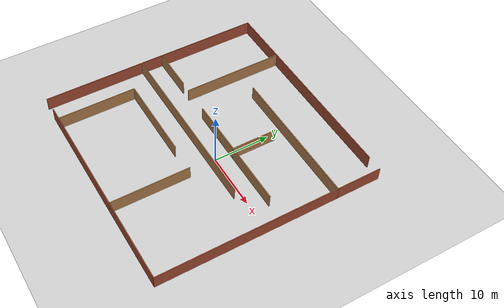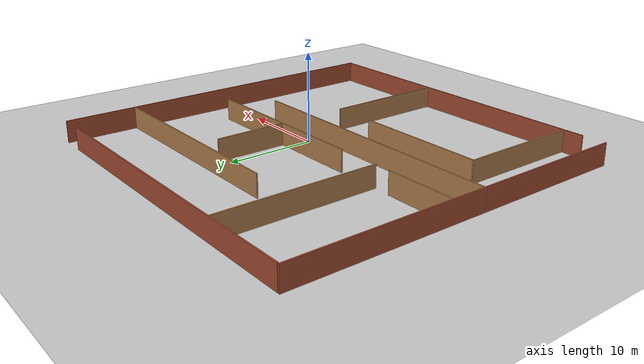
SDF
<sdf version="1.6">
 <world name="default">
  <light name="sun" type="directional">
   <pose>0 0 10 0 -0 0</pose>
   <diffuse>0.8 0.8 0.8 1</diffuse>
   <specular>0.1 0.1 0.1 1</specular>
   <attenuation>
    <range>1000</range>
    <constant>0.9</constant>
    <linear>0.01</linear>
    <quadratic>0.001</quadratic>
   </attenuation>
   <direction>-0.5 0.5 -1</direction>
  </light>
  <model name="ground_plane">
   <static>1</static>
   <link name="link">
    <collision name="collision">
     <geometry><plane><normal>0 0 1</normal><size>100 100</size></plane></geometry>
     <surface><friction><ode><mu>100</mu><mu2>50</mu2></ode></friction></surface>
    </collision>
    <visual name="visual">
     <cast_shadows>0</cast_shadows>
     <geometry><plane><normal>0 0 1</normal><size>100 100</size></plane></geometry>
     <material>
      <script><uri>file://media/materials/scripts/gazebo.material</uri><name>Gazebo/Grey</name></script>
     </material>
    </visual>
   </link>
  </model>
  <gravity>0 0 -9.8</gravity>
  <magnetic_field>6e-06 2.3e-05 -4.2e-05</magnetic_field>
  <atmosphere type="adiabatic"/>
  <physics name="default_physics" default="0" type="ode">
   <max_step_size>0.001</max_step_size>
   <real_time_factor>1</real_time_factor>
   <real_time_update_rate>1000</real_time_update_rate>
  </physics>
  <scene><ambient>0.4 0.4 0.4 1</ambient><background>0.7 0.7 0.7 1</background><shadows>1</shadows></scene>
  <spherical_coordinates>
   <surface_model>EARTH_WGS84</surface_model>
   <latitude_deg>0</latitude_deg>
   <longitude_deg>0</longitude_deg>
   <elevation>0</elevation>
   <heading_deg>0</heading_deg>
  </spherical_coordinates>
  <model name="room">
   <link name="Wall_0">
    <pose>-20 0 0 0 -0 1.5708</pose>
    <inertial>
     <mass>1</mass>
     <inertia><ixx>1</ixx><ixy>0</ixy><ixz>0</ixz><iyy>1</iyy><iyz>0</iyz><izz>1</izz></inertia>
    </inertial>
    <visual name="Wall_0_Visual">
     <pose>0 0 1.25 0 -0 0</pose>
     <geometry><box><size>40.15 0.15 2.5</size></box></geometry>
     <material>
      <script><uri>file://media/materials/scripts/gazebo.material</uri><name>Gazebo/Bricks</name></script>
      <ambient>0.761 0.663 0.627 1</ambient>
      <diffuse>1 1 1 1</diffuse>
      <specular>0.2 0.2 0.2 1</specular>
      <emissive>0 0 0 1</emissive>
      <shader type="vertex"><normal_map>__default__</normal_map></shader>
     </material>
    </visual>
    <collision name="Wall_0_Collision">
     <pose>0 0 1.25 0 -0 0</pose>
     <geometry><box><size>40.15 0.15 2.5</size></box></geometry>
     <surface>
      <friction>
       <ode><mu>1</mu><mu2>1</mu2><fdir1>0 0 0</fdir1><slip1>0</slip1><slip2>0</slip2></ode>
       <torsional>
        <coefficient>1</coefficient>
        <patch_radius>0</patch_radius>
        <surface_radius>0</surface_radius>
        <use_patch_radius>1</use_patch_radius>
        <ode><slip>0</slip></ode>
       </torsional>
      </friction>
      <bounce><restitution_coefficient>0</restitution_coefficient><threshold>1e+06</threshold></bounce>
      <contact>
       <collide_without_contact>0</collide_without_contact>
       <collide_without_contact_bitmask>1</collide_without_contact_bitmask>
       <collide_bitmask>1</collide_bitmask>
       <ode>
        <soft_cfm>0</soft_cfm>
        <soft_erp>0.2</soft_erp>
        <kp>1e+13</kp>
        <kd>1</kd>
        <max_vel>0.01</max_vel>
        <min_depth>0</min_depth>
       </ode>
       <bullet>
        <split_impulse>1</split_impulse>
        <split_impulse_penetration_threshold>-0.01</split_impulse_penetration_threshold>
        <soft_cfm>0</soft_cfm>
        <soft_erp>0.2</soft_erp>
        <kp>1e+13</kp>
        <kd>1</kd>
       </bullet>
      </contact>
     </surface>
    </collision>
   </link>
   <link name="Wall_10">
    <pose>-16 2 0 0 -0 0</pose>
    <visual name="Wall_10_Visual">
     <pose>0 0 1.25 0 -0 0</pose>
     <geometry><box><size>8.15 0.15 2.5</size></box></geometry>
     <material>
      <script><uri>file://media/materials/scripts/gazebo.material</uri><name>Gazebo/Wood</name></script>
      <ambient>0.996078 0.47451 0.0196078 1</ambient>
      <diffuse>1 1 1 1</diffuse>
      <specular>0.2 0.2 0.2 1</specular>
      <emissive>0 0 0 1</emissive>
     </material>
    </visual>
    <collision name="Wall_10_Collision">
     <pose>0 0 1.25 0 -0 0</pose>
     <geometry><box><size>8.15 0.15 2.5</size></box></geometry>
     <surface>
      <friction>
       <ode><mu>1</mu><mu2>1</mu2><fdir1>0 0 0</fdir1><slip1>0</slip1><slip2>0</slip2></ode>
       <torsional>
        <coefficient>1</coefficient>
        <patch_radius>0</patch_radius>
        <surface_radius>0</surface_radius>
        <use_patch_radius>1</use_patch_radius>
        <ode><slip>0</slip></ode>
       </torsional>
      </friction>
      <bounce><restitution_coefficient>0</restitution_coefficient><threshold>1e+06</threshold></bounce>
      <contact>
       <collide_without_contact>0</collide_without_contact>
       <collide_without_contact_bitmask>1</collide_without_contact_bitmask>
       <collide_bitmask>1</collide_bitmask>
       <ode>
        <soft_cfm>0</soft_cfm>
        <soft_erp>0.2</soft_erp>
        <kp>1e+13</kp>
        <kd>1</kd>
        <max_vel>0.01</max_vel>
        <min_depth>0</min_depth>
       </ode>
       <bullet>
        <split_impulse>1</split_impulse>
        <split_impulse_penetration_threshold>-0.01</split_impulse_penetration_threshold>
        <soft_cfm>0</soft_cfm>
        <soft_erp>0.2</soft_erp>
        <kp>1e+13</kp>
        <kd>1</kd>
       </bullet>
      </contact>
     </surface>
    </collision>
   </link>
   <link name="Wall_12">
    <pose>-10 11 0 0 0 -1.5708</pose>
    <visual name="Wall_12_Visual">
     <pose>0 0 1.25 0 -0 0</pose>
     <geometry><box><size>18.15 0.15 2.5</size></box></geometry>
     <material>
      <script><uri>file://media/materials/scripts/gazebo.material</uri><name>Gazebo/Wood</name></script>
      <ambient>0.996078 0.47451 0.0196078 1</ambient>
      <diffuse>1 1 1 1</diffuse>
      <specular>0.2 0.2 0.2 1</specular>
      <emissive>0 0 0 1</emissive>
     </material>
    </visual>
    <collision name="Wall_12_Collision">
     <pose>0 0 1.25 0 -0 0</pose>
     <geometry><box><size>18.15 0.15 2.5</size></box></geometry>
     <surface>
      <friction>
       <ode><mu>1</mu><mu2>1</mu2><fdir1>0 0 0</fdir1><slip1>0</slip1><slip2>0</slip2></ode>
       <torsional>
        <coefficient>1</coefficient>
        <patch_radius>0</patch_radius>
        <surface_radius>0</surface_radius>
        <use_patch_radius>1</use_patch_radius>
        <ode><slip>0</slip></ode>
       </torsional>
      </friction>
      <bounce><restitution_coefficient>0</restitution_coefficient><threshold>1e+06</threshold></bounce>
      <contact>
       <collide_without_contact>0</collide_without_contact>
       <collide_without_contact_bitmask>1</collide_without_contact_bitmask>
       <collide_bitmask>1</collide_bitmask>
       <ode>
        <soft_cfm>0</soft_cfm>
        <soft_erp>0.2</soft_erp>
        <kp>1e+13</kp>
        <kd>1</kd>
        <max_vel>0.01</max_vel>
        <min_depth>0</min_depth>
       </ode>
       <bullet>
        <split_impulse>1</split_impulse>
        <split_impulse_penetration_threshold>-0.01</split_impulse_penetration_threshold>
        <soft_cfm>0</soft_cfm>
        <soft_erp>0.2</soft_erp>
        <kp>1e+13</kp>
        <kd>1</kd>
       </bullet>
      </contact>
     </surface>
    </collision>
   </link>
   <link name="Wall_14">
    <pose>7.5 12 0 0 -0 3.14159</pose>
    <visual name="Wall_14_Visual">
     <pose>0 0 1.25 0 -0 0</pose>
     <geometry><box><size>25.15 0.15 2.5</size></box></geometry>
     <material>
      <script><uri>file://media/materials/scripts/gazebo.material</uri><name>Gazebo/Wood</name></script>
      <ambient>0.996078 0.47451 0.0196078 1</ambient>
      <diffuse>1 1 1 1</diffuse>
      <specular>0.2 0.2 0.2 1</specular>
      <emissive>0 0 0 1</emissive>
     </material>
    </visual>
    <collision name="Wall_14_Collision">
     <pose>0 0 1.25 0 -0 0</pose>
     <geometry><box><size>25.15 0.15 2.5</size></box></geometry>
     <surface>
      <friction>
       <ode><mu>1</mu><mu2>1</mu2><fdir1>0 0 0</fdir1><slip1>0</slip1><slip2>0</slip2></ode>
       <torsional>
        <coefficient>1</coefficient>
        <patch_radius>0</patch_radius>
        <surface_radius>0</surface_radius>
        <use_patch_radius>1</use_patch_radius>
        <ode><slip>0</slip></ode>
       </torsional>
      </friction>
      <bounce><restitution_coefficient>0</restitution_coefficient><threshold>1e+06</threshold></bounce>
      <contact>
       <collide_without_contact>0</collide_without_contact>
       <collide_without_contact_bitmask>1</collide_without_contact_bitmask>
       <collide_bitmask>1</collide_bitmask>
       <ode>
        <soft_cfm>0</soft_cfm>
        <soft_erp>0.2</soft_erp>
        <kp>1e+13</kp>
        <kd>1</kd>
        <max_vel>0.01</max_vel>
        <min_depth>0</min_depth>
       </ode>
       <bullet>
        <split_impulse>1</split_impulse>
        <split_impulse_penetration_threshold>-0.01</split_impulse_penetration_threshold>
        <soft_cfm>0</soft_cfm>
        <soft_erp>0.2</soft_erp>
        <kp>1e+13</kp>
        <kd>1</kd>
       </bullet>
      </contact>
     </surface>
    </collision>
   </link>
   <link name="Wall_18">
    <pose>5.5 2 0 0 -0 0</pose>
    <visual name="Wall_18_Visual">
     <pose>0 0 1.25 0 -0 0</pose>
     <geometry><box><size>21.15 0.15 2.5</size></box></geometry>
     <material>
      <script><uri>file://media/materials/scripts/gazebo.material</uri><name>Gazebo/Wood</name></script>
      <ambient>0.996078 0.47451 0.0196078 1</ambient>
      <diffuse>1 1 1 1</diffuse>
      <specular>0.2 0.2 0.2 1</specular>
      <emissive>0 0 0 1</emissive>
     </material>
    </visual>
    <collision name="Wall_18_Collision">
     <pose>0 0 1.25 0 -0 0</pose>
     <geometry><box><size>21.15 0.15 2.5</size></box></geometry>
     <surface>
      <friction>
       <ode><mu>1</mu><mu2>1</mu2><fdir1>0 0 0</fdir1><slip1>0</slip1><slip2>0</slip2></ode>
       <torsional>
        <coefficient>1</coefficient>
        <patch_radius>0</patch_radius>
        <surface_radius>0</surface_radius>
        <use_patch_radius>1</use_patch_radius>
        <ode><slip>0</slip></ode>
       </torsional>
      </friction>
      <bounce><restitution_coefficient>0</restitution_coefficient><threshold>1e+06</threshold></bounce>
      <contact>
       <collide_without_contact>0</collide_without_contact>
       <collide_without_contact_bitmask>1</collide_without_contact_bitmask>
       <collide_bitmask>1</collide_bitmask>
       <ode>
        <soft_cfm>0</soft_cfm>
        <soft_erp>0.2</soft_erp>
        <kp>1e+13</kp>
        <kd>1</kd>
        <max_vel>0.01</max_vel>
        <min_depth>0</min_depth>
       </ode>
       <bullet>
        <split_impulse>1</split_impulse>
        <split_impulse_penetration_threshold>-0.01</split_impulse_penetration_threshold>
        <soft_cfm>0</soft_cfm>
        <soft_erp>0.2</soft_erp>
        <kp>1e+13</kp>
        <kd>1</kd>
       </bullet>
      </contact>
     </surface>
    </collision>
   </link>
   <link name="Wall_2">
    <pose>20 0 0 0 -0 1.5708</pose>
    <visual name="Wall_2_Visual">
     <pose>0 0 1.25 0 -0 0</pose>
     <geometry><box><size>40.15 0.15 2.5</size></box></geometry>
     <material>
      <script><uri>file://media/materials/scripts/gazebo.material</uri><name>Gazebo/Bricks</name></script>
      <ambient>0.760784 0.662745 0.627451 1</ambient>
      <diffuse>1 1 1 1</diffuse>
      <specular>0.2 0.2 0.2 1</specular>
      <emissive>0 0 0 1</emissive>
     </material>
    </visual>
    <collision name="Wall_2_Collision">
     <pose>0 0 1.25 0 -0 0</pose>
     <geometry><box><size>40.15 0.15 2.5</size></box></geometry>
     <surface>
      <friction>
       <ode><mu>1</mu><mu2>1</mu2><fdir1>0 0 0</fdir1><slip1>0</slip1><slip2>0</slip2></ode>
       <torsional>
        <coefficient>1</coefficient>
        <patch_radius>0</patch_radius>
        <surface_radius>0</surface_radius>
        <use_patch_radius>1</use_patch_radius>
        <ode><slip>0</slip></ode>
       </torsional>
      </friction>
      <bounce><restitution_coefficient>0</restitution_coefficient><threshold>1e+06</threshold></bounce>
      <contact>
       <collide_without_contact>0</collide_without_contact>
       <collide_without_contact_bitmask>1</collide_without_contact_bitmask>
       <collide_bitmask>1</collide_bitmask>
       <ode>
        <soft_cfm>0</soft_cfm>
        <soft_erp>0.2</soft_erp>
        <kp>1e+13</kp>
        <kd>1</kd>
        <max_vel>0.01</max_vel>
        <min_depth>0</min_depth>
       </ode>
       <bullet>
        <split_impulse>1</split_impulse>
        <split_impulse_penetration_threshold>-0.01</split_impulse_penetration_threshold>
        <soft_cfm>0</soft_cfm>
        <soft_erp>0.2</soft_erp>
        <kp>1e+13</kp>
        <kd>1</kd>
       </bullet>
      </contact>
     </surface>
    </collision>
   </link>
   <link name="Wall_20">
    <pose>5 6 0 0 0 -1.5708</pose>
    <visual name="Wall_20_Visual">
     <pose>0 0 1.25 0 -0 0</pose>
     <geometry><box><size>8.15 0.15 2.5</size></box></geometry>
     <material>
      <script><uri>file://media/materials/scripts/gazebo.material</uri><name>Gazebo/Wood</name></script>
      <ambient>0.996078 0.47451 0.0196078 1</ambient>
      <diffuse>1 1 1 1</diffuse>
      <specular>0.2 0.2 0.2 1</specular>
      <emissive>0 0 0 1</emissive>
     </material>
    </visual>
    <collision name="Wall_20_Collision">
     <pose>0 0 1.25 0 -0 0</pose>
     <geometry><box><size>8.15 0.15 2.5</size></box></geometry>
     <surface>
      <friction>
       <ode><mu>1</mu><mu2>1</mu2><fdir1>0 0 0</fdir1><slip1>0</slip1><slip2>0</slip2></ode>
       <torsional>
        <coefficient>1</coefficient>
        <patch_radius>0</patch_radius>
        <surface_radius>0</surface_radius>
        <use_patch_radius>1</use_patch_radius>
        <ode><slip>0</slip></ode>
       </torsional>
      </friction>
      <bounce><restitution_coefficient>0</restitution_coefficient><threshold>1e+06</threshold></bounce>
      <contact>
       <collide_without_contact>0</collide_without_contact>
       <collide_without_contact_bitmask>1</collide_without_contact_bitmask>
       <collide_bitmask>1</collide_bitmask>
       <ode>
        <soft_cfm>0</soft_cfm>
        <soft_erp>0.2</soft_erp>
        <kp>1e+13</kp>
        <kd>1</kd>
        <max_vel>0.01</max_vel>
        <min_depth>0</min_depth>
       </ode>
       <bullet>
        <split_impulse>1</split_impulse>
        <split_impulse_penetration_threshold>-0.01</split_impulse_penetration_threshold>
        <soft_cfm>0</soft_cfm>
        <soft_erp>0.2</soft_erp>
        <kp>1e+13</kp>
        <kd>1</kd>
       </bullet>
      </contact>
     </surface>
    </collision>
   </link>
   <link name="Wall_23">
    <pose>-15 -13 0 0 -0 1.5708</pose>
    <visual name="Wall_23_Visual">
     <pose>0 0 1.25 0 -0 0</pose>
     <geometry><box><size>14.15 0.15 2.5</size></box></geometry>
     <material>
      <script><uri>file://media/materials/scripts/gazebo.material</uri><name>Gazebo/Wood</name></script>
      <ambient>0.996078 0.47451 0.0196078 1</ambient>
      <diffuse>1 1 1 1</diffuse>
      <specular>0.2 0.2 0.2 1</specular>
      <emissive>0 0 0 1</emissive>
     </material>
    </visual>
    <collision name="Wall_23_Collision">
     <pose>0 0 1.25 0 -0 0</pose>
     <geometry><box><size>14.15 0.15 2.5</size></box></geometry>
     <surface>
      <friction>
       <ode><mu>1</mu><mu2>1</mu2><fdir1>0 0 0</fdir1><slip1>0</slip1><slip2>0</slip2></ode>
       <torsional>
        <coefficient>1</coefficient>
        <patch_radius>0</patch_radius>
        <surface_radius>0</surface_radius>
        <use_patch_radius>1</use_patch_radius>
        <ode><slip>0</slip></ode>
       </torsional>
      </friction>
      <bounce><restitution_coefficient>0</restitution_coefficient><threshold>1e+06</threshold></bounce>
      <contact>
       <collide_without_contact>0</collide_without_contact>
       <collide_without_contact_bitmask>1</collide_without_contact_bitmask>
       <collide_bitmask>1</collide_bitmask>
       <ode>
        <soft_cfm>0</soft_cfm>
        <soft_erp>0.2</soft_erp>
        <kp>1e+13</kp>
        <kd>1</kd>
        <max_vel>0.01</max_vel>
        <min_depth>0</min_depth>
       </ode>
       <bullet>
        <split_impulse>1</split_impulse>
        <split_impulse_penetration_threshold>-0.01</split_impulse_penetration_threshold>
        <soft_cfm>0</soft_cfm>
        <soft_erp>0.2</soft_erp>
        <kp>1e+13</kp>
        <kd>1</kd>
       </bullet>
      </contact>
     </surface>
    </collision>
   </link>
   <link name="Wall_24">
    <pose>-7.5 -6 0 0 -0 0</pose>
    <visual name="Wall_24_Visual">
     <pose>0 0 1.25 0 -0 0</pose>
     <geometry><box><size>15.15 0.15 2.5</size></box></geometry>
     <material>
      <script><uri>file://media/materials/scripts/gazebo.material</uri><name>Gazebo/Wood</name></script>
      <ambient>0.996078 0.47451 0.0196078 1</ambient>
      <diffuse>1 1 1 1</diffuse>
      <specular>0.2 0.2 0.2 1</specular>
      <emissive>0 0 0 1</emissive>
     </material>
    </visual>
    <collision name="Wall_24_Collision">
     <pose>0 0 1.25 0 -0 0</pose>
     <geometry><box><size>15.15 0.15 2.5</size></box></geometry>
     <surface>
      <friction>
       <ode><mu>1</mu><mu2>1</mu2><fdir1>0 0 0</fdir1><slip1>0</slip1><slip2>0</slip2></ode>
       <torsional>
        <coefficient>1</coefficient>
        <patch_radius>0</patch_radius>
        <surface_radius>0</surface_radius>
        <use_patch_radius>1</use_patch_radius>
        <ode><slip>0</slip></ode>
       </torsional>
      </friction>
      <bounce><restitution_coefficient>0</restitution_coefficient><threshold>1e+06</threshold></bounce>
      <contact>
       <collide_without_contact>0</collide_without_contact>
       <collide_without_contact_bitmask>1</collide_without_contact_bitmask>
       <collide_bitmask>1</collide_bitmask>
       <ode>
        <soft_cfm>0</soft_cfm>
        <soft_erp>0.2</soft_erp>
        <kp>1e+13</kp>
        <kd>1</kd>
        <max_vel>0.01</max_vel>
        <min_depth>0</min_depth>
       </ode>
       <bullet>
        <split_impulse>1</split_impulse>
        <split_impulse_penetration_threshold>-0.01</split_impulse_penetration_threshold>
        <soft_cfm>0</soft_cfm>
        <soft_erp>0.2</soft_erp>
        <kp>1e+13</kp>
        <kd>1</kd>
       </bullet>
      </contact>
     </surface>
    </collision>
   </link>
   <link name="Wall_26">
    <pose>5 -13 0 0 -0 1.5708</pose>
    <visual name="Wall_26_Visual">
     <pose>0 0 1.25 0 -0 0</pose>
     <geometry><box><size>14.15 0.15 2.5</size></box></geometry>
     <material>
      <script><uri>file://media/materials/scripts/gazebo.material</uri><name>Gazebo/Wood</name></script>
      <ambient>0.996078 0.47451 0.0196078 1</ambient>
      <diffuse>1 1 1 1</diffuse>
      <specular>0.2 0.2 0.2 1</specular>
      <emissive>0 0 0 1</emissive>
     </material>
    </visual>
    <collision name="Wall_26_Collision">
     <pose>0 0 1.25 0 -0 0</pose>
     <geometry><box><size>14.15 0.15 2.5</size></box></geometry>
     <surface>
      <friction>
       <ode><mu>1</mu><mu2>1</mu2><fdir1>0 0 0</fdir1><slip1>0</slip1><slip2>0</slip2></ode>
       <torsional>
        <coefficient>1</coefficient>
        <patch_radius>0</patch_radius>
        <surface_radius>0</surface_radius>
        <use_patch_radius>1</use_patch_radius>
        <ode><slip>0</slip></ode>
       </torsional>
      </friction>
      <bounce><restitution_coefficient>0</restitution_coefficient><threshold>1e+06</threshold></bounce>
      <contact>
       <collide_without_contact>0</collide_without_contact>
       <collide_without_contact_bitmask>1</collide_without_contact_bitmask>
       <collide_bitmask>1</collide_bitmask>
       <ode>
        <soft_cfm>0</soft_cfm>
        <soft_erp>0.2</soft_erp>
        <kp>1e+13</kp>
        <kd>1</kd>
        <max_vel>0.01</max_vel>
        <min_depth>0</min_depth>
       </ode>
       <bullet>
        <split_impulse>1</split_impulse>
        <split_impulse_penetration_threshold>-0.01</split_impulse_penetration_threshold>
        <soft_cfm>0</soft_cfm>
        <soft_erp>0.2</soft_erp>
        <kp>1e+13</kp>
        <kd>1</kd>
       </bullet>
      </contact>
     </surface>
    </collision>
   </link>
   <link name="Wall_28">
    <pose>-1.25 20 0 0 -0 0</pose>
    <inertial>
     <mass>1</mass>
     <inertia><ixx>1</ixx><ixy>0</ixy><ixz>0</ixz><iyy>1</iyy><iyz>0</iyz><izz>1</izz></inertia>
    </inertial>
    <visual name="Wall_28_Visual">
     <pose>0 0 1.25 0 -0 0</pose>
     <geometry><box><size>37.15 0.15 2.5</size></box></geometry>
     <material>
      <script><uri>file://media/materials/scripts/gazebo.material</uri><name>Gazebo/Bricks</name></script>
      <ambient>0.761 0.663 0.627 1</ambient>
      <diffuse>1 1 1 1</diffuse>
      <specular>0.2 0.2 0.2 1</specular>
      <emissive>0 0 0 1</emissive>
      <shader type="vertex"><normal_map>__default__</normal_map></shader>
     </material>
    </visual>
    <collision name="Wall_28_Collision">
     <pose>0 0 1.25 0 -0 0</pose>
     <geometry><box><size>37.15 0.15 2.5</size></box></geometry>
     <surface>
      <friction>
       <ode><mu>1</mu><mu2>1</mu2><fdir1>0 0 0</fdir1><slip1>0</slip1><slip2>0</slip2></ode>
       <torsional>
        <coefficient>1</coefficient>
        <patch_radius>0</patch_radius>
        <surface_radius>0</surface_radius>
        <use_patch_radius>1</use_patch_radius>
        <ode><slip>0</slip></ode>
       </torsional>
      </friction>
      <bounce><restitution_coefficient>0</restitution_coefficient><threshold>1e+06</threshold></bounce>
      <contact>
       <collide_without_contact>0</collide_without_contact>
       <collide_without_contact_bitmask>1</collide_without_contact_bitmask>
       <collide_bitmask>1</collide_bitmask>
       <ode>
        <soft_cfm>0</soft_cfm>
        <soft_erp>0.2</soft_erp>
        <kp>1e+13</kp>
        <kd>1</kd>
        <max_vel>0.01</max_vel>
        <min_depth>0</min_depth>
       </ode>
       <bullet>
        <split_impulse>1</split_impulse>
        <split_impulse_penetration_threshold>-0.01</split_impulse_penetration_threshold>
        <soft_cfm>0</soft_cfm>
        <soft_erp>0.2</soft_erp>
        <kp>1e+13</kp>
        <kd>1</kd>
       </bullet>
      </contact>
     </surface>
    </collision>
   </link>
   <link name="Wall_4">
    <pose>1.25 -20 0 0 -0 0</pose>
    <inertial>
     <mass>1</mass>
     <inertia><ixx>1</ixx><ixy>0</ixy><ixz>0</ixz><iyy>1</iyy><iyz>0</iyz><izz>1</izz></inertia>
    </inertial>
    <visual name="Wall_4_Visual">
     <pose>0 0 1.25 0 -0 0</pose>
     <geometry><box><size>37.15 0.15 2.5</size></box></geometry>
     <material>
      <script><uri>file://media/materials/scripts/gazebo.material</uri><name>Gazebo/Bricks</name></script>
      <ambient>0.761 0.663 0.627 1</ambient>
      <diffuse>1 1 1 1</diffuse>
      <specular>0.2 0.2 0.2 1</specular>
      <emissive>0 0 0 1</emissive>
      <shader type="vertex"><normal_map>__default__</normal_map></shader>
     </material>
    </visual>
    <collision name="Wall_4_Collision">
     <pose>0 0 1.25 0 -0 0</pose>
     <geometry><box><size>37.15 0.15 2.5</size></box></geometry>
     <surface>
      <friction>
       <ode><mu>1</mu><mu2>1</mu2><fdir1>0 0 0</fdir1><slip1>0</slip1><slip2>0</slip2></ode>
       <torsional>
        <coefficient>1</coefficient>
        <patch_radius>0</patch_radius>
        <surface_radius>0</surface_radius>
        <use_patch_radius>1</use_patch_radius>
        <ode><slip>0</slip></ode>
       </torsional>
      </friction>
      <bounce><restitution_coefficient>0</restitution_coefficient><threshold>1e+06</threshold></bounce>
      <contact>
       <collide_without_contact>0</collide_without_contact>
       <collide_without_contact_bitmask>1</collide_without_contact_bitmask>
       <collide_bitmask>1</collide_bitmask>
       <ode>
        <soft_cfm>0</soft_cfm>
        <soft_erp>0.2</soft_erp>
        <kp>1e+13</kp>
        <kd>1</kd>
        <max_vel>0.01</max_vel>
        <min_depth>0</min_depth>
       </ode>
       <bullet>
        <split_impulse>1</split_impulse>
        <split_impulse_penetration_threshold>-0.01</split_impulse_penetration_threshold>
        <soft_cfm>0</soft_cfm>
        <soft_erp>0.2</soft_erp>
        <kp>1e+13</kp>
        <kd>1</kd>
       </bullet>
      </contact>
     </surface>
    </collision>
   </link>
   <link name="Wall_8">
    <pose>-3.95 -2 0 0 -0 0</pose>
    <visual name="Wall_8_Visual">
     <pose>0 0 1.25 0 -0 0</pose>
     <geometry><box><size>32.25 0.15 2.5</size></box></geometry>
     <material>
      <script><uri>file://media/materials/scripts/gazebo.material</uri><name>Gazebo/Wood</name></script>
      <ambient>0.996078 0.47451 0.0196078 1</ambient>
      <diffuse>1 1 1 1</diffuse>
      <specular>0.2 0.2 0.2 1</specular>
      <emissive>0 0 0 1</emissive>
     </material>
    </visual>
    <collision name="Wall_8_Collision">
     <pose>0 0 1.25 0 -0 0</pose>
     <geometry><box><size>32.25 0.15 2.5</size></box></geometry>
     <surface>
      <friction>
       <ode><mu>1</mu><mu2>1</mu2><fdir1>0 0 0</fdir1><slip1>0</slip1><slip2>0</slip2></ode>
       <torsional>
        <coefficient>1</coefficient>
        <patch_radius>0</patch_radius>
        <surface_radius>0</surface_radius>
        <use_patch_radius>1</use_patch_radius>
        <ode><slip>0</slip></ode>
       </torsional>
      </friction>
      <bounce><restitution_coefficient>0</restitution_coefficient><threshold>1e+06</threshold></bounce>
      <contact>
       <collide_without_contact>0</collide_without_contact>
       <collide_without_contact_bitmask>1</collide_without_contact_bitmask>
       <collide_bitmask>1</collide_bitmask>
       <ode>
        <soft_cfm>0</soft_cfm>
        <soft_erp>0.2</soft_erp>
        <kp>1e+13</kp>
        <kd>1</kd>
        <max_vel>0.01</max_vel>
        <min_depth>0</min_depth>
       </ode>
       <bullet>
        <split_impulse>1</split_impulse>
        <split_impulse_penetration_threshold>-0.01</split_impulse_penetration_threshold>
        <soft_cfm>0</soft_cfm>
        <soft_erp>0.2</soft_erp>
        <kp>1e+13</kp>
        <kd>1</kd>
       </bullet>
      </contact>
     </surface>
    </collision>
   </link>
   <static>1</static>
   <pose>-3.94336 0.71708 0 0 -0 0</pose>
  </model>
 </world>
</sdf>
